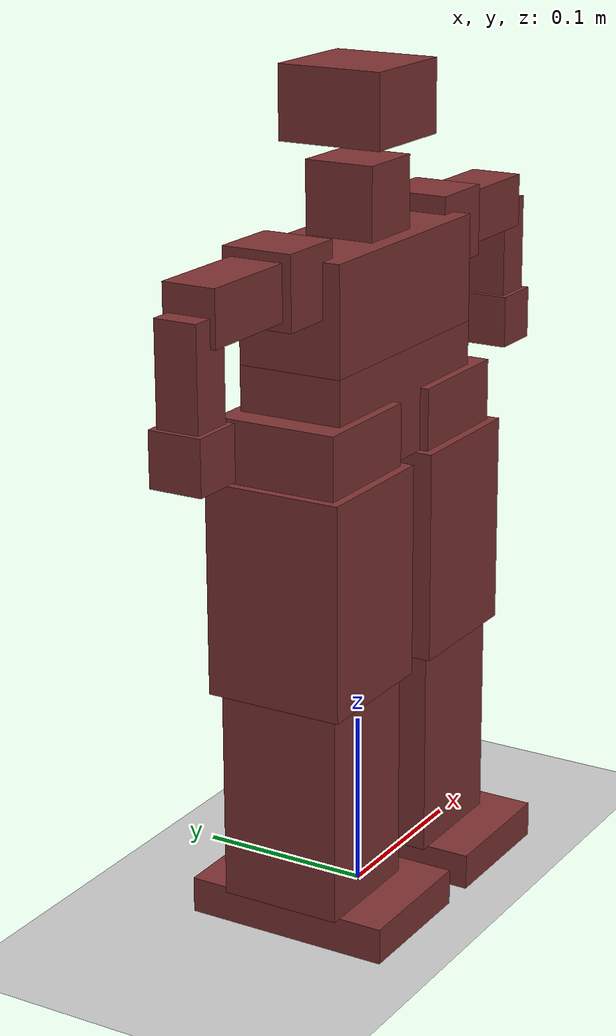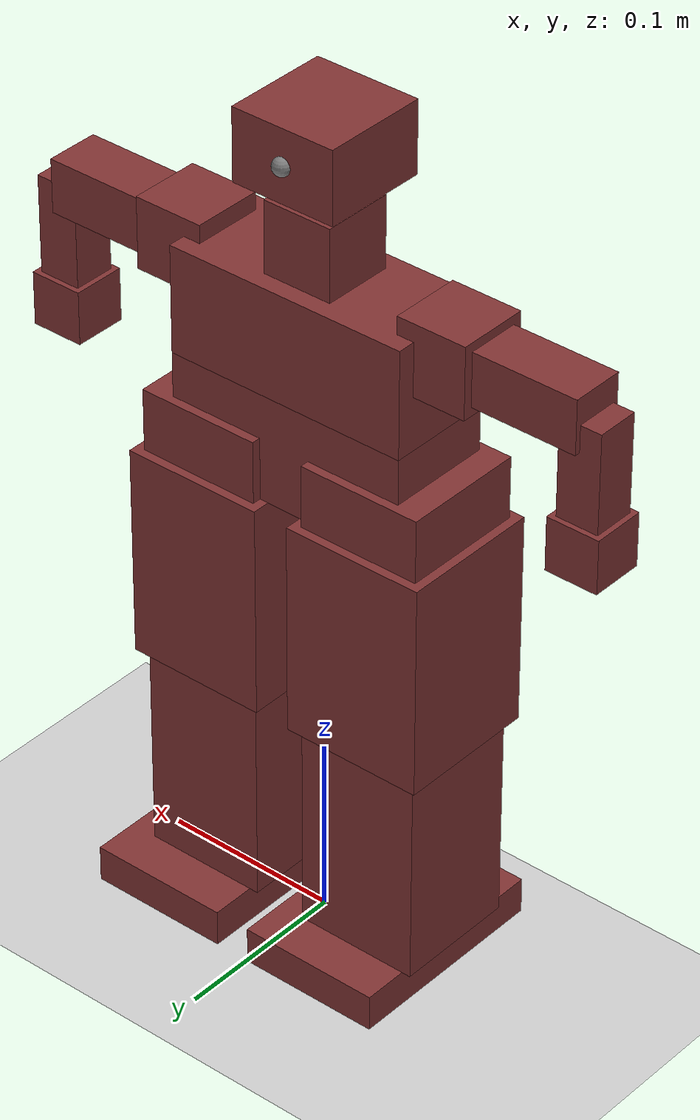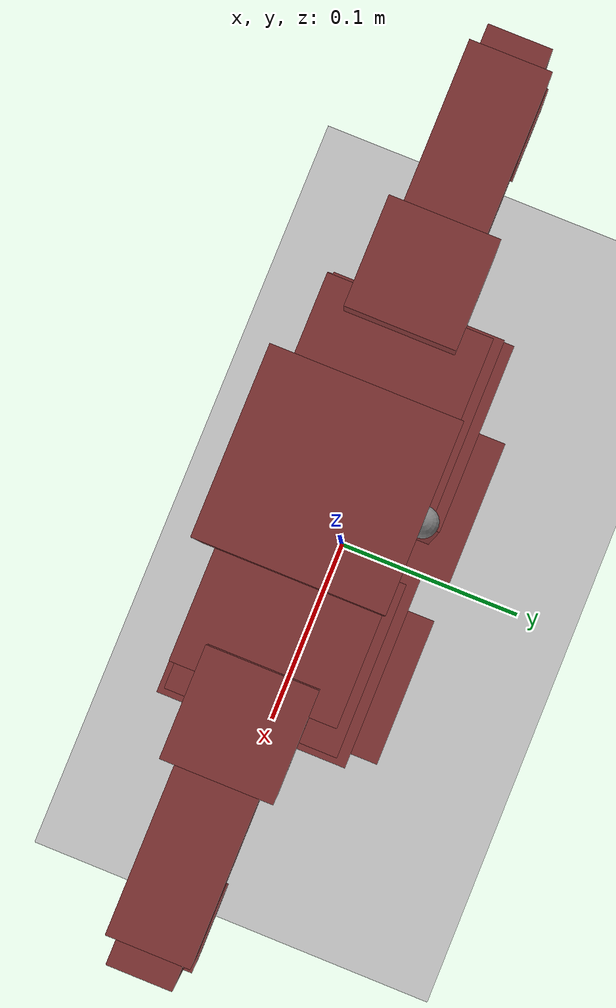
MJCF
<mujoco model="full_humanoid">
  <compiler angle="degree" coordinate="local"/>

  <option timestep="0.002" gravity="0 0 -9.81"/>

  <default>
    <joint damping="0.5" armature="0.01"/>
    <geom contype="1" conaffinity="1" friction="1 0.5 0.5"/>
    <motor ctrllimited="true" ctrlrange="-1 1"/>
  </default>

  <worldbody>
    <!-- Ground plane -->
    <geom name="floor" type="plane" size="10 10 0.1" rgba="0.8 0.8 0.8 1"/>

    <!-- Torso (pelvis) - floating base -->
    <body name="torso" pos="0 0 0.29">
      <freejoint name="root"/>
      <geom name="pelvis" type="box" size="0.07 0.03 0.03" rgba="0.5 0.2 0.2 1" mass="1.5"/>
      <site name="torso_site" pos="0 0 0"/>

      <!-- Upper body -->
      <body name="upper_torso" pos="0 0 0.06">
        <geom name="chest" type="box" size="0.07 0.03 0.03" rgba="0.5 0.2 0.2 1" mass="1"/>

        <!-- HEAD (Servo 0) -->
        <body name="neck" pos="0 0 0.05">
          <geom name="neck_geom" type="box" size="0.02 0.02 0.02" rgba="0.5 0.2 0.2 1" mass="0.2"/>

          <body name="head" pos="0 0 0.05">
            <!-- Servo 0: Head rotation (left/right) -->
            <joint name="head_pan" type="hinge" axis="0 0 1" range="-90 90"/>
            <geom name="head_geom" type="box" size="0.03 0.03 0.02" rgba="0.5 0.2 0.2 1" mass="0.3"/>
            <site name="head_site" pos="0 0.03 0"/>
          </body>
        </body>

        <!-- RIGHT ARM (Servos 1, 2, 3) - T-pose with bent elbow -->
        <body name="right_shoulder" pos="0.08 0 0.02">
          <!-- Servo 1: Shoulder (fwd/back) -->
          <joint name="right_shoulder_pitch" type="hinge" axis="0 1 0" range="-90 90"/>
          <geom name="right_shoulder_geom" type="box" size="0.02 0.02 0.02" rgba="0.5 0.2 0.2 1"/>

          <body name="right_upper_arm" pos="0 0 0">
            <!-- Servo 2: Upper arm (in/out) -->
            <joint name="right_shoulder_roll" type="hinge" axis="1 0 0" range="-30 90"/>
            <geom name="right_upper_arm_geom" type="box" size="0.04 0.015 0.015" pos="0.04 0 0" rgba="0.5 0.2 0.2 1" mass="0.3"/>

            <body name="right_forearm" pos="0.08 0 0">
              <!-- Servo 3: Elbow (in/out) -->
              <joint name="right_elbow" type="hinge" axis="0 1 0" range="0 120"/>
              <geom name="right_forearm_geom" type="box" size="0.012 0.012 0.035" pos="0 0 -0.035" rgba="0.5 0.2 0.2 1" mass="0.2"/>

              <body name="right_hand" pos="0 0 -0.07">
                <geom name="right_hand_geom" type="box" size="0.015 0.015 0.015" rgba="0.5 0.2 0.2 1" mass="0.1"/>
              </body>
            </body>
          </body>
        </body>

        <!-- LEFT ARM (Servos 12, 13, 14) - T-pose with bent elbow -->
        <body name="left_shoulder" pos="-0.08 0 0.02">
          <!-- Servo 12: Shoulder (fwd/back) -->
          <joint name="left_shoulder_pitch" type="hinge" axis="0 1 0" range="-90 90"/>
          <geom name="left_shoulder_geom" type="box" size="0.02 0.02 0.02" rgba="0.5 0.2 0.2 1"/>

          <body name="left_upper_arm" pos="0 0 0">
            <!-- Servo 13: Upper arm (in/out) -->
            <joint name="left_shoulder_roll" type="hinge" axis="1 0 0" range="-90 30"/>
            <geom name="left_upper_arm_geom" type="box" size="0.04 0.015 0.015" pos="-0.04 0 0" rgba="0.5 0.2 0.2 1" mass="0.3"/>

            <body name="left_forearm" pos="-0.08 0 0">
              <!-- Servo 14: Elbow (in/out) -->
              <joint name="left_elbow" type="hinge" axis="0 1 0" range="0 120"/>
              <geom name="left_forearm_geom" type="box" size="0.012 0.012 0.035" pos="0 0 -0.035" rgba="0.5 0.2 0.2 1" mass="0.2"/>

              <body name="left_hand" pos="0 0 -0.07">
                <geom name="left_hand_geom" type="box" size="0.015 0.015 0.015" rgba="0.5 0.2 0.2 1" mass="0.1"/>
              </body>
            </body>
          </body>
        </body>
      </body>

      <!-- RIGHT LEG (Servos 4, 5, 6, 7) -->
      <body name="right_hip" pos="0.05 0 -0.03">
        <!-- Servo 4: Hip roll (out/in) -->
        <joint name="right_hip_roll" type="hinge" axis="1 0 0" range="-30 30"/>
        <geom name="right_hip_geom" type="box" size="0.035 0.035 0.035" rgba="0.5 0.2 0.2 1"/>

        <body name="right_thigh" pos="0 0 0">
          <!-- Servo 5: Hip pitch (fwd/back) -->
          <joint name="right_hip_pitch" type="hinge" axis="0 1 0" range="-60 60"/>
          <geom name="right_thigh_geom" type="box" size="0.04 0.04 0.06" pos="0 0 -0.06" rgba="0.5 0.2 0.2 1" mass="1.5"/>

          <body name="right_shin" pos="0 0 -0.12">
            <!-- Servo 6: Knee (fwd/back) -->
            <joint name="right_knee" type="hinge" axis="0 1 0" range="0 120"/>
            <geom name="right_shin_geom" type="box" size="0.035 0.035 0.06" pos="0 0 -0.06" rgba="0.5 0.2 0.2 1" mass="1"/>

            <body name="right_foot" pos="0 0 -0.12">
              <!-- Servo 7: Ankle pitch (fwd/back) -->
              <joint name="right_ankle_pitch" type="hinge" axis="0 1 0" range="-45 45"/>
              <geom name="right_foot_geom" type="box" size="0.04 0.06 0.015" pos="0.01 0 -0.015" rgba="0.5 0.2 0.2 1" mass="0.5"/>
              <!-- Foot: 8cm wide (X) × 12cm long (Y) × 3cm tall (Z) -->
              <site name="right_foot_site" pos="0 0 -0.02"/>
            </body>
          </body>
        </body>
      </body>

      <!-- LEFT LEG (Servos 15, 16, 17, 18) -->
      <body name="left_hip" pos="-0.05 0 -0.03">
        <!-- Servo 15: Hip roll (out/in) -->
        <joint name="left_hip_roll" type="hinge" axis="1 0 0" range="-30 30"/>
        <geom name="left_hip_geom" type="box" size="0.035 0.035 0.035" rgba="0.5 0.2 0.2 1"/>

        <body name="left_thigh" pos="0 0 0">
          <!-- Servo 16: Hip pitch (fwd/back) -->
          <joint name="left_hip_pitch" type="hinge" axis="0 1 0" range="-60 60"/>
          <geom name="left_thigh_geom" type="box" size="0.04 0.04 0.06" pos="0 0 -0.06" rgba="0.5 0.2 0.2 1" mass="1.5"/>

          <body name="left_shin" pos="0 0 -0.12">
            <!-- Servo 17: Knee (fwd/back) -->
            <joint name="left_knee" type="hinge" axis="0 1 0" range="0 120"/>
            <geom name="left_shin_geom" type="box" size="0.035 0.035 0.06" pos="0 0 -0.06" rgba="0.5 0.2 0.2 1" mass="1"/>

            <body name="left_foot" pos="0 0 -0.12">
              <!-- Servo 18: Ankle pitch (fwd/back) -->
              <joint name="left_ankle_pitch" type="hinge" axis="0 1 0" range="-45 45"/>
              <geom name="left_foot_geom" type="box" size="0.04 0.06 0.015" pos="0.01 0 -0.015" rgba="0.5 0.2 0.2 1" mass="0.5"/>
              <!-- Foot: 8cm wide (X) × 12cm long (Y) × 3cm tall (Z) -->
              <site name="left_foot_site" pos="0 0 -0.02"/>
            </body>
          </body>
        </body>
      </body>
    </body>
  </worldbody>

  <actuator>
    <!-- Head (servo 0) -->
    <motor name="head_motor" joint="head_pan" gear="20"/>

    <!-- Right arm (servos 1, 2, 3) -->
    <motor name="right_shoulder_pitch_motor" joint="right_shoulder_pitch" gear="30"/>
    <motor name="right_shoulder_roll_motor" joint="right_shoulder_roll" gear="30"/>
    <motor name="right_elbow_motor" joint="right_elbow" gear="20"/>

    <!-- Left arm (servos 12, 13, 14) -->
    <motor name="left_shoulder_pitch_motor" joint="left_shoulder_pitch" gear="30"/>
    <motor name="left_shoulder_roll_motor" joint="left_shoulder_roll" gear="30"/>
    <motor name="left_elbow_motor" joint="left_elbow" gear="20"/>

    <!-- Right leg (servos 4, 5, 6, 7) -->
    <motor name="right_hip_roll_motor" joint="right_hip_roll" gear="50"/>
    <motor name="right_hip_pitch_motor" joint="right_hip_pitch" gear="50"/>
    <motor name="right_knee_motor" joint="right_knee" gear="50"/>
    <motor name="right_ankle_pitch_motor" joint="right_ankle_pitch" gear="40"/>

    <!-- Left leg (servos 15, 16, 17, 18) -->
    <motor name="left_hip_roll_motor" joint="left_hip_roll" gear="50"/>
    <motor name="left_hip_pitch_motor" joint="left_hip_pitch" gear="50"/>
    <motor name="left_knee_motor" joint="left_knee" gear="50"/>
    <motor name="left_ankle_pitch_motor" joint="left_ankle_pitch" gear="40"/>
  </actuator>
</mujoco>
